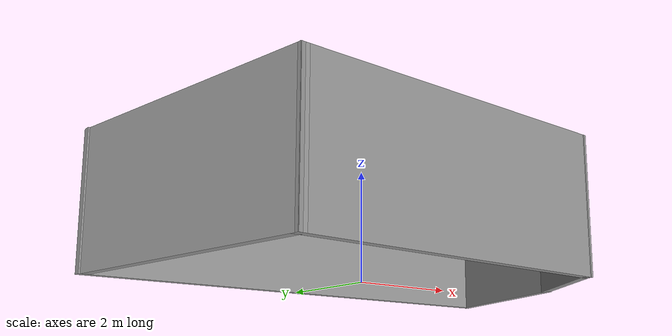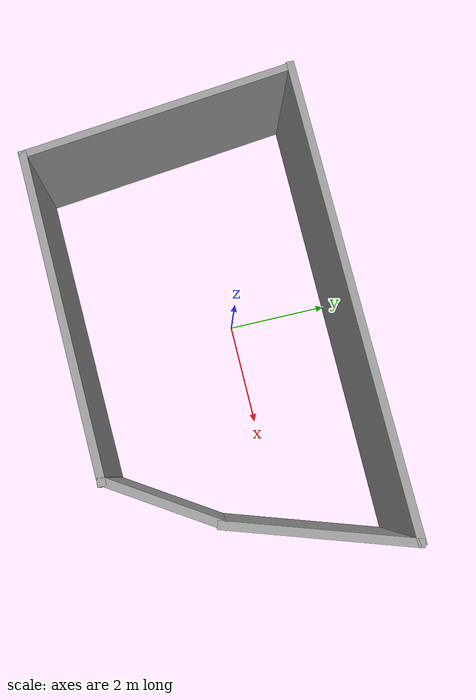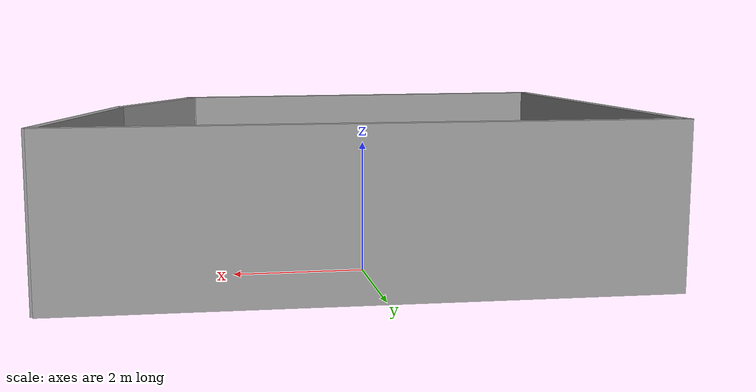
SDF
<?xml version='1.0'?>
<sdf version='1.6'>
  <model name='Untitled'>
    <pose frame=''>0.236951 -0.530748 0 0 -0 0</pose>
    <link name='Wall_0'>
      <collision name='Wall_0_Collision'>
        <geometry>
          <box>
            <size>9.04138 0.15 2.5</size>
          </box>
        </geometry>
        <pose frame=''>0 0 1.25 0 -0 0</pose>
      </collision>
      <visual name='Wall_0_Visual'>
        <pose frame=''>0 0 1.25 0 -0 0</pose>
        <geometry>
          <box>
            <size>9.04138 0.15 2.5</size>
          </box>
        </geometry>
        <material>
          <script>
            <uri>file://media/materials/scripts/gazebo.material</uri>
            <name>Gazebo/Grey</name>
          </script>
          <ambient>1 1 1 1</ambient>
        </material>
      </visual>
      <pose frame=''>-0.020786 2.57564 0 0 0 -0.017203</pose>
    </link>
    <link name='Wall_1'>
      <collision name='Wall_1_Collision'>
        <geometry>
          <box>
            <size>3.3931 0.15 2.5</size>
          </box>
        </geometry>
        <pose frame=''>0 0 1.25 0 -0 0</pose>
      </collision>
      <visual name='Wall_1_Visual'>
        <pose frame=''>0 0 1.25 0 -0 0</pose>
        <geometry>
          <box>
            <size>3.3931 0.15 2.5</size>
          </box>
        </geometry>
        <material>
          <script>
            <uri>file://media/materials/scripts/gazebo.material</uri>
            <name>Gazebo/Grey</name>
          </script>
          <ambient>1 1 1 1</ambient>
        </material>
      </visual>
      <pose frame=''>3.93937 0.93611 0 0 0 -1.88945</pose>
    </link>
    <link name='Wall_2'>
      <collision name='Wall_2_Collision'>
        <geometry>
          <box>
            <size>2.2651 0.15 2.5</size>
          </box>
        </geometry>
        <pose frame=''>0 0 1.25 0 -0 0</pose>
      </collision>
      <visual name='Wall_2_Visual'>
        <pose frame=''>0 0 1.25 0 -0 0</pose>
        <geometry>
          <box>
            <size>2.2651 0.15 2.5</size>
          </box>
        </geometry>
        <material>
          <script>
            <uri>file://media/materials/scripts/gazebo.material</uri>
            <name>Gazebo/Grey</name>
          </script>
          <ambient>1 1 1 1</ambient>
        </material>
      </visual>
      <pose frame=''>2.86544 -1.47407 0 0 0 -2.13545</pose>
    </link>
    <link name='Wall_3'>
      <collision name='Wall_3_Collision'>
        <geometry>
          <box>
            <size>0.15 0.15 2.5</size>
          </box>
        </geometry>
        <pose frame=''>0 0 1.25 0 -0 0</pose>
      </collision>
      <visual name='Wall_3_Visual'>
        <pose frame=''>0 0 1.25 0 -0 0</pose>
        <geometry>
          <box>
            <size>0.15 0.15 2.5</size>
          </box>
        </geometry>
        <material>
          <script>
            <uri>file://media/materials/scripts/gazebo.material</uri>
            <name>Gazebo/Grey</name>
          </script>
          <ambient>1 1 1 1</ambient>
        </material>
      </visual>
      <pose frame=''>2.29952 -2.39059 0 0 -0 0</pose>
    </link>
    <link name='Wall_4'>
      <collision name='Wall_4_Collision'>
        <geometry>
          <box>
            <size>6.26748 0.15 2.5</size>
          </box>
        </geometry>
        <pose frame=''>0 0 1.25 0 -0 0</pose>
      </collision>
      <visual name='Wall_4_Visual'>
        <pose frame=''>0 0 1.25 0 -0 0</pose>
        <geometry>
          <box>
            <size>6.26748 0.15 2.5</size>
          </box>
        </geometry>
        <material>
          <script>
            <uri>file://media/materials/scripts/gazebo.material</uri>
            <name>Gazebo/Grey</name>
          </script>
          <ambient>1 1 1 1</ambient>
        </material>
      </visual>
      <pose frame=''>-0.756567 -2.51781 0 0 0 -3.09999</pose>
    </link>
    <link name='Wall_5'>
      <collision name='Wall_5_Collision'>
        <geometry>
          <box>
            <size>0.15 0.15 2.5</size>
          </box>
        </geometry>
        <pose frame=''>0 0 1.25 0 -0 0</pose>
      </collision>
      <visual name='Wall_5_Visual'>
        <pose frame=''>0 0 1.25 0 -0 0</pose>
        <geometry>
          <box>
            <size>0.15 0.15 2.5</size>
          </box>
        </geometry>
        <material>
          <script>
            <uri>file://media/materials/scripts/gazebo.material</uri>
            <name>Gazebo/Grey</name>
          </script>
          <ambient>1 1 1 1</ambient>
        </material>
      </visual>
      <pose frame=''>-3.81266 -2.64502 0 0 -0 0</pose>
    </link>
    <link name='Wall_6'>
      <collision name='Wall_6_Collision'>
        <geometry>
          <box>
            <size>5.4615 0.15 2.5</size>
          </box>
        </geometry>
        <pose frame=''>0 0 1.25 0 -0 0</pose>
      </collision>
      <visual name='Wall_6_Visual'>
        <pose frame=''>0 0 1.25 0 -0 0</pose>
        <geometry>
          <box>
            <size>5.4615 0.15 2.5</size>
          </box>
        </geometry>
        <material>
          <script>
            <uri>file://media/materials/scripts/gazebo.material</uri>
            <name>Gazebo/Grey</name>
          </script>
          <ambient>1 1 1 1</ambient>
        </material>
      </visual>
      <pose frame=''>-4.12767 -0.008021 0 0 -0 1.68969</pose>
    </link>
    <static>1</static>
  </model>
</sdf>
